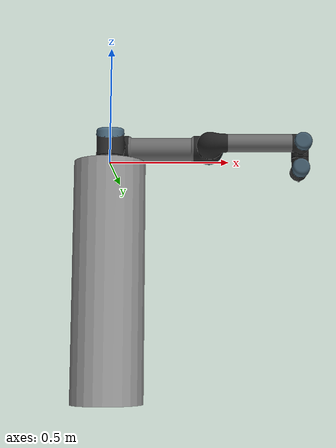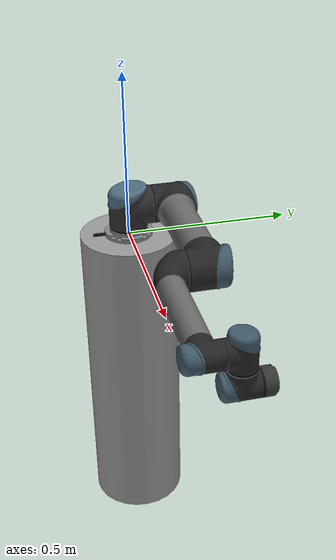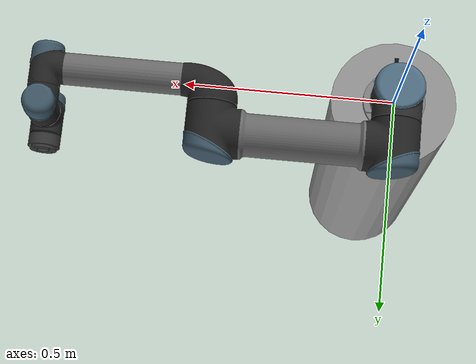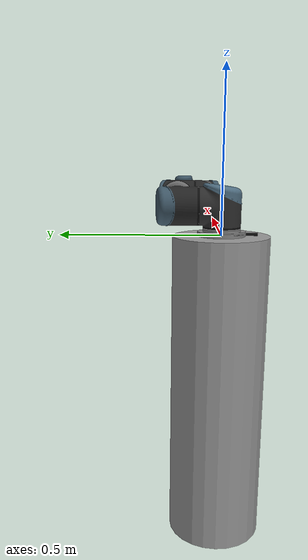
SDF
<?xml version='1.0'?>
<sdf version='1.6'>
  <model name='ur5'>
    <link name='base_link'>
      <pose frame=''>0 0 0 0 -0 0</pose>
      <inertial>
        <pose frame=''>0 0 0 0 -0 0</pose>
        <mass>4</mass>
        <inertia>
          <ixx>0.00443333</ixx>
          <ixy>0</ixy>
          <ixz>0</ixz>
          <iyy>0.00443333</iyy>
          <iyz>0</iyz>
          <izz>0.0072</izz>
        </inertia>
      </inertial>
      <self_collide>0</self_collide>
      <enable_wind>0</enable_wind>
      <kinematic>0</kinematic>
      <visual name='base_link_visual'>
        <pose frame=''>0 0 0 0 -0 0</pose>
        <geometry>
          <mesh>
            <scale>1 1 1</scale>
            <uri>model://ur5/meshes/ur5/visual/base.dae</uri>
          </mesh>
        </geometry>
        <transparency>0</transparency>
        <cast_shadows>1</cast_shadows>
        <material>
          <emissive>0 0 0 1</emissive>
        </material>
      </visual>
      <collision name='base_link_collision'>
        <laser_retro>0</laser_retro>
        <max_contacts>10</max_contacts>
        <pose frame=''>0 0 0 0 -0 0</pose>
        <geometry>
          <mesh>
            <uri>model://ur5/meshes/ur5/collision/base.stl</uri>
            <scale>1 1 1</scale>
          </mesh>
        </geometry>
        <surface>
          <friction>
            <ode>
              <mu>1</mu>
              <mu2>1</mu2>
              <fdir1>0 0 0</fdir1>
              <slip1>0</slip1>
              <slip2>0</slip2>
            </ode>
            <torsional>
              <coefficient>1</coefficient>
              <patch_radius>0</patch_radius>
              <surface_radius>0</surface_radius>
              <use_patch_radius>1</use_patch_radius>
              <ode>
                <slip>0</slip>
              </ode>
            </torsional>
          </friction>
          <bounce>
            <restitution_coefficient>0</restitution_coefficient>
            <threshold>1e+06</threshold>
          </bounce>
          <contact>
            <collide_without_contact>0</collide_without_contact>
            <collide_without_contact_bitmask>1</collide_without_contact_bitmask>
            <collide_bitmask>1</collide_bitmask>
            <ode>
              <soft_cfm>0</soft_cfm>
              <soft_erp>0.2</soft_erp>
              <kp>1e+13</kp>
              <kd>1</kd>
              <max_vel>0.01</max_vel>
              <min_depth>0</min_depth>
            </ode>
            <bullet>
              <split_impulse>1</split_impulse>
              <split_impulse_penetration_threshold>-0.01</split_impulse_penetration_threshold>
              <soft_cfm>0</soft_cfm>
              <soft_erp>0.2</soft_erp>
              <kp>1e+13</kp>
              <kd>1</kd>
            </bullet>
          </contact>
        </surface>
      </collision>
    </link>
    <link name='forearm_link'>
      <pose frame=''>0.425 0.01615 0.089159 3.14148 1.57079 3.14148</pose>
      <inertial>
        <pose frame=''>0 0 0.25 0 -0 0</pose>
        <mass>2.275</mass>
        <inertia>
          <ixx>0.0494433</ixx>
          <ixy>0</ixy>
          <ixz>0</ixz>
          <iyy>0.0494433</iyy>
          <iyz>0</iyz>
          <izz>0.004095</izz>
        </inertia>
      </inertial>
      <gravity>1</gravity>
      <velocity_decay/>
      <self_collide>1</self_collide>
      <enable_wind>0</enable_wind>
      <kinematic>0</kinematic>
      <visual name='forearm_link_visual'>
        <pose frame=''>0 0 0 0 -0 0</pose>
        <geometry>
          <mesh>
            <scale>1 1 1</scale>
            <uri>model://ur5/meshes/ur5/visual/forearm.dae</uri>
          </mesh>
        </geometry>
        <material>
          <script>
            <uri>__default__</uri>
            <name>__default__</name>
          </script>
        </material>
        <transparency>0</transparency>
        <cast_shadows>1</cast_shadows>
      </visual>
      <collision name='forearm_link_collision'>
        <laser_retro>0</laser_retro>
        <max_contacts>10</max_contacts>
        <pose frame=''>0 0 0 0 -0 0</pose>
        <geometry>
          <mesh>
            <uri>model://ur5/meshes/ur5/collision/forearm.stl</uri>
            <scale>1 1 1</scale>
          </mesh>
        </geometry>
        <surface>
          <friction>
            <ode>
              <mu>1</mu>
              <mu2>1</mu2>
              <fdir1>0 0 0</fdir1>
              <slip1>0</slip1>
              <slip2>0</slip2>
            </ode>
            <torsional>
              <coefficient>1</coefficient>
              <patch_radius>0</patch_radius>
              <surface_radius>0</surface_radius>
              <use_patch_radius>1</use_patch_radius>
              <ode>
                <slip>0</slip>
              </ode>
            </torsional>
          </friction>
          <bounce>
            <restitution_coefficient>0</restitution_coefficient>
            <threshold>1e+06</threshold>
          </bounce>
          <contact>
            <collide_without_contact>0</collide_without_contact>
            <collide_without_contact_bitmask>1</collide_without_contact_bitmask>
            <collide_bitmask>1</collide_bitmask>
            <ode>
              <soft_cfm>0</soft_cfm>
              <soft_erp>0.2</soft_erp>
              <kp>1e+13</kp>
              <kd>1</kd>
              <max_vel>0.01</max_vel>
              <min_depth>0</min_depth>
            </ode>
            <bullet>
              <split_impulse>1</split_impulse>
              <split_impulse_penetration_threshold>-0.01</split_impulse_penetration_threshold>
              <soft_cfm>0</soft_cfm>
              <soft_erp>0.2</soft_erp>
              <kp>1e+13</kp>
              <kd>1</kd>
            </bullet>
          </contact>
        </surface>
      </collision>
    </link>
    <link name='link_0'>
      <inertial>
        <mass>1</mass>
        <inertia>
          <ixx>0.145833</ixx>
          <ixy>0</ixy>
          <ixz>0</ixz>
          <iyy>0.145833</iyy>
          <iyz>0</iyz>
          <izz>0.125</izz>
        </inertia>
        <pose frame=''>0 0 0 0 -0 0</pose>
      </inertial>
      <pose frame=''>-0 -0 -0.5 -2.8e-05 0.00015 0</pose>
      <gravity>1</gravity>
      <self_collide>0</self_collide>
      <kinematic>0</kinematic>
      <enable_wind>0</enable_wind>
      <visual name='visual'>
        <pose frame=''>0 0 0 0 -0 0</pose>
        <geometry>
          <cylinder>
            <radius>0.15</radius>
            <length>1</length>
          </cylinder>
        </geometry>
        <material>
          <lighting>1</lighting>
          <script>
            <uri>file://media/materials/scripts/gazebo.material</uri>
            <name>Gazebo/Grey</name>
          </script>
          <shader type='vertex'>
            <normal_map>__default__</normal_map>
          </shader>
          <ambient>0.3 0.3 0.3 1</ambient>
          <diffuse>0.7 0.7 0.7 1</diffuse>
          <specular>0.01 0.01 0.01 1</specular>
          <emissive>0 0 0 1</emissive>
        </material>
        <transparency>0</transparency>
        <cast_shadows>1</cast_shadows>
      </visual>
      <collision name='collision'>
        <laser_retro>0</laser_retro>
        <max_contacts>10</max_contacts>
        <pose frame=''>0 0 0 0 -0 0</pose>
        <geometry>
          <cylinder>
            <radius>0.15</radius>
            <length>1</length>
          </cylinder>
        </geometry>
        <surface>
          <friction>
            <ode>
              <mu>1</mu>
              <mu2>1</mu2>
              <fdir1>0 0 0</fdir1>
              <slip1>0</slip1>
              <slip2>0</slip2>
            </ode>
            <torsional>
              <coefficient>1</coefficient>
              <patch_radius>0</patch_radius>
              <surface_radius>0</surface_radius>
              <use_patch_radius>1</use_patch_radius>
              <ode>
                <slip>0</slip>
              </ode>
            </torsional>
          </friction>
          <bounce>
            <restitution_coefficient>0</restitution_coefficient>
            <threshold>1e+06</threshold>
          </bounce>
          <contact>
            <collide_without_contact>0</collide_without_contact>
            <collide_without_contact_bitmask>1</collide_without_contact_bitmask>
            <collide_bitmask>1</collide_bitmask>
            <ode>
              <soft_cfm>0</soft_cfm>
              <soft_erp>0.2</soft_erp>
              <kp>1e+13</kp>
              <kd>1</kd>
              <max_vel>0.01</max_vel>
              <min_depth>0</min_depth>
            </ode>
            <bullet>
              <split_impulse>1</split_impulse>
              <split_impulse_penetration_threshold>-0.01</split_impulse_penetration_threshold>
              <soft_cfm>0</soft_cfm>
              <soft_erp>0.2</soft_erp>
              <kp>1e+13</kp>
              <kd>1</kd>
            </bullet>
          </contact>
        </surface>
      </collision>
    </link>
    <link name='shoulder_link'>
      <pose frame=''>0 -0 0.089159 0 -0 0</pose>
      <inertial>
        <pose frame=''>0 0 0 0 -0 0</pose>
        <mass>3.7</mass>
        <inertia>
          <ixx>0.0102675</ixx>
          <ixy>0</ixy>
          <ixz>0</ixz>
          <iyy>0.0102675</iyy>
          <iyz>0</iyz>
          <izz>0.00666</izz>
        </inertia>
      </inertial>
      <gravity>1</gravity>
      <velocity_decay/>
      <self_collide>1</self_collide>
      <enable_wind>0</enable_wind>
      <kinematic>0</kinematic>
      <visual name='shoulder_link_visual'>
        <pose frame=''>0 0 0 0 -0 0</pose>
        <geometry>
          <mesh>
            <scale>1 1 1</scale>
            <uri>model://ur5/meshes/ur5/visual/shoulder.dae</uri>
          </mesh>
        </geometry>
        <material>
          <script>
            <uri>__default__</uri>
            <name>__default__</name>
          </script>
        </material>
        <transparency>0</transparency>
        <cast_shadows>1</cast_shadows>
      </visual>
      <collision name='shoulder_link_collision'>
        <laser_retro>0</laser_retro>
        <max_contacts>10</max_contacts>
        <pose frame=''>0 0 0 0 -0 0</pose>
        <geometry>
          <mesh>
            <uri>model://ur5/meshes/ur5/collision/shoulder.stl</uri>
            <scale>1 1 1</scale>
          </mesh>
        </geometry>
        <surface>
          <friction>
            <ode>
              <mu>1</mu>
              <mu2>1</mu2>
              <fdir1>0 0 0</fdir1>
              <slip1>0</slip1>
              <slip2>0</slip2>
            </ode>
            <torsional>
              <coefficient>1</coefficient>
              <patch_radius>0</patch_radius>
              <surface_radius>0</surface_radius>
              <use_patch_radius>1</use_patch_radius>
              <ode>
                <slip>0</slip>
              </ode>
            </torsional>
          </friction>
          <bounce>
            <restitution_coefficient>0</restitution_coefficient>
            <threshold>1e+06</threshold>
          </bounce>
          <contact>
            <collide_without_contact>0</collide_without_contact>
            <collide_without_contact_bitmask>1</collide_without_contact_bitmask>
            <collide_bitmask>1</collide_bitmask>
            <ode>
              <soft_cfm>0</soft_cfm>
              <soft_erp>0.2</soft_erp>
              <kp>1e+13</kp>
              <kd>1</kd>
              <max_vel>0.01</max_vel>
              <min_depth>0</min_depth>
            </ode>
            <bullet>
              <split_impulse>1</split_impulse>
              <split_impulse_penetration_threshold>-0.01</split_impulse_penetration_threshold>
              <soft_cfm>0</soft_cfm>
              <soft_erp>0.2</soft_erp>
              <kp>1e+13</kp>
              <kd>1</kd>
            </bullet>
          </contact>
        </surface>
      </collision>
    </link>
    <link name='upper_arm_link'>
      <pose frame=''>-0 0.13585 0.089159 3.14148 1.57079 3.14148</pose>
      <inertial>
        <pose frame=''>0 0 0.28 0 -0 0</pose>
        <mass>8.393</mass>
        <inertia>
          <ixx>0.226891</ixx>
          <ixy>0</ixy>
          <ixz>0</ixz>
          <iyy>0.226891</iyy>
          <iyz>0</iyz>
          <izz>0.0151074</izz>
        </inertia>
      </inertial>
      <gravity>1</gravity>
      <velocity_decay/>
      <self_collide>1</self_collide>
      <enable_wind>0</enable_wind>
      <kinematic>0</kinematic>
      <visual name='upper_arm_link_visual'>
        <pose frame=''>0 0 0 0 -0 0</pose>
        <geometry>
          <mesh>
            <scale>1 1 1</scale>
            <uri>model://ur5/meshes/ur5/visual/upperarm.dae</uri>
          </mesh>
        </geometry>
        <material>
          <script>
            <uri>__default__</uri>
            <name>__default__</name>
          </script>
        </material>
        <transparency>0</transparency>
        <cast_shadows>1</cast_shadows>
      </visual>
      <collision name='upper_arm_link_collision'>
        <laser_retro>0</laser_retro>
        <max_contacts>10</max_contacts>
        <pose frame=''>0 0 0 0 -0 0</pose>
        <geometry>
          <mesh>
            <uri>model://ur5/meshes/ur5/collision/upperarm.stl</uri>
            <scale>1 1 1</scale>
          </mesh>
        </geometry>
        <surface>
          <friction>
            <ode>
              <mu>1</mu>
              <mu2>1</mu2>
              <fdir1>0 0 0</fdir1>
              <slip1>0</slip1>
              <slip2>0</slip2>
            </ode>
            <torsional>
              <coefficient>1</coefficient>
              <patch_radius>0</patch_radius>
              <surface_radius>0</surface_radius>
              <use_patch_radius>1</use_patch_radius>
              <ode>
                <slip>0</slip>
              </ode>
            </torsional>
          </friction>
          <bounce>
            <restitution_coefficient>0</restitution_coefficient>
            <threshold>1e+06</threshold>
          </bounce>
          <contact>
            <collide_without_contact>0</collide_without_contact>
            <collide_without_contact_bitmask>1</collide_without_contact_bitmask>
            <collide_bitmask>1</collide_bitmask>
            <ode>
              <soft_cfm>0</soft_cfm>
              <soft_erp>0.2</soft_erp>
              <kp>1e+13</kp>
              <kd>1</kd>
              <max_vel>0.01</max_vel>
              <min_depth>0</min_depth>
            </ode>
            <bullet>
              <split_impulse>1</split_impulse>
              <split_impulse_penetration_threshold>-0.01</split_impulse_penetration_threshold>
              <soft_cfm>0</soft_cfm>
              <soft_erp>0.2</soft_erp>
              <kp>1e+13</kp>
              <kd>1</kd>
            </bullet>
          </contact>
        </surface>
      </collision>
    </link>
    <link name='wrist_1_link'>
      <pose frame=''>0.81725 0.01615 0.089159 3.14159 -0 3.14159</pose>
      <inertial>
        <pose frame=''>0 0 0 0 -0 0</pose>
        <mass>1.219</mass>
        <inertia>
          <ixx>0.111173</ixx>
          <ixy>0</ixy>
          <ixz>0</ixz>
          <iyy>0.111173</iyy>
          <iyz>0</iyz>
          <izz>0.21942</izz>
        </inertia>
      </inertial>
      <gravity>1</gravity>
      <velocity_decay/>
      <self_collide>1</self_collide>
      <enable_wind>0</enable_wind>
      <kinematic>0</kinematic>
      <visual name='wrist_1_link_visual'>
        <pose frame=''>0 0 0 0 -0 0</pose>
        <geometry>
          <mesh>
            <scale>1 1 1</scale>
            <uri>model://ur5/meshes/ur5/visual/wrist1.dae</uri>
          </mesh>
        </geometry>
        <material>
          <script>
            <uri>__default__</uri>
            <name>__default__</name>
          </script>
        </material>
        <transparency>0</transparency>
        <cast_shadows>1</cast_shadows>
      </visual>
      <collision name='wrist_1_link_collision'>
        <laser_retro>0</laser_retro>
        <max_contacts>10</max_contacts>
        <pose frame=''>0 0 0 0 -0 0</pose>
        <geometry>
          <mesh>
            <uri>model://ur5/meshes/ur5/collision/wrist1.stl</uri>
            <scale>1 1 1</scale>
          </mesh>
        </geometry>
        <surface>
          <friction>
            <ode>
              <mu>1</mu>
              <mu2>1</mu2>
              <fdir1>0 0 0</fdir1>
              <slip1>0</slip1>
              <slip2>0</slip2>
            </ode>
            <torsional>
              <coefficient>1</coefficient>
              <patch_radius>0</patch_radius>
              <surface_radius>0</surface_radius>
              <use_patch_radius>1</use_patch_radius>
              <ode>
                <slip>0</slip>
              </ode>
            </torsional>
          </friction>
          <bounce>
            <restitution_coefficient>0</restitution_coefficient>
            <threshold>1e+06</threshold>
          </bounce>
          <contact>
            <collide_without_contact>0</collide_without_contact>
            <collide_without_contact_bitmask>1</collide_without_contact_bitmask>
            <collide_bitmask>1</collide_bitmask>
            <ode>
              <soft_cfm>0</soft_cfm>
              <soft_erp>0.2</soft_erp>
              <kp>1e+13</kp>
              <kd>1</kd>
              <max_vel>0.01</max_vel>
              <min_depth>0</min_depth>
            </ode>
            <bullet>
              <split_impulse>1</split_impulse>
              <split_impulse_penetration_threshold>-0.01</split_impulse_penetration_threshold>
              <soft_cfm>0</soft_cfm>
              <soft_erp>0.2</soft_erp>
              <kp>1e+13</kp>
              <kd>1</kd>
            </bullet>
          </contact>
        </surface>
      </collision>
    </link>
    <link name='wrist_2_link'>
      <pose frame=''>0.81725 0.10915 0.089159 3.14159 -0 3.14159</pose>
      <inertial>
        <pose frame=''>0 0 0 0 -0 0</pose>
        <mass>1.219</mass>
        <inertia>
          <ixx>0.111173</ixx>
          <ixy>0</ixy>
          <ixz>0</ixz>
          <iyy>0.111173</iyy>
          <iyz>0</iyz>
          <izz>0.21942</izz>
        </inertia>
      </inertial>
      <gravity>1</gravity>
      <velocity_decay/>
      <self_collide>1</self_collide>
      <enable_wind>0</enable_wind>
      <kinematic>0</kinematic>
      <visual name='wrist_2_link_visual'>
        <pose frame=''>0 0 0 0 -0 0</pose>
        <geometry>
          <mesh>
            <scale>1 1 1</scale>
            <uri>model://ur5/meshes/ur5/visual/wrist2.dae</uri>
          </mesh>
        </geometry>
        <material>
          <script>
            <uri>__default__</uri>
            <name>__default__</name>
          </script>
        </material>
        <transparency>0</transparency>
        <cast_shadows>1</cast_shadows>
      </visual>
      <collision name='wrist_2_link_collision'>
        <laser_retro>0</laser_retro>
        <max_contacts>10</max_contacts>
        <pose frame=''>0 0 0 0 -0 0</pose>
        <geometry>
          <mesh>
            <uri>model://ur5/meshes/ur5/collision/wrist2.stl</uri>
            <scale>1 1 1</scale>
          </mesh>
        </geometry>
        <surface>
          <friction>
            <ode>
              <mu>1</mu>
              <mu2>1</mu2>
              <fdir1>0 0 0</fdir1>
              <slip1>0</slip1>
              <slip2>0</slip2>
            </ode>
            <torsional>
              <coefficient>1</coefficient>
              <patch_radius>0</patch_radius>
              <surface_radius>0</surface_radius>
              <use_patch_radius>1</use_patch_radius>
              <ode>
                <slip>0</slip>
              </ode>
            </torsional>
          </friction>
          <bounce>
            <restitution_coefficient>0</restitution_coefficient>
            <threshold>1e+06</threshold>
          </bounce>
          <contact>
            <collide_without_contact>0</collide_without_contact>
            <collide_without_contact_bitmask>1</collide_without_contact_bitmask>
            <collide_bitmask>1</collide_bitmask>
            <ode>
              <soft_cfm>0</soft_cfm>
              <soft_erp>0.2</soft_erp>
              <kp>1e+13</kp>
              <kd>1</kd>
              <max_vel>0.01</max_vel>
              <min_depth>0</min_depth>
            </ode>
            <bullet>
              <split_impulse>1</split_impulse>
              <split_impulse_penetration_threshold>-0.01</split_impulse_penetration_threshold>
              <soft_cfm>0</soft_cfm>
              <soft_erp>0.2</soft_erp>
              <kp>1e+13</kp>
              <kd>1</kd>
            </bullet>
          </contact>
        </surface>
      </collision>
    </link>
    <link name='wrist_3_link'>
      <pose frame=''>0.81725 0.10915 -0.005491 3.14159 -0 3.14159</pose>
      <inertial>
        <pose frame=''>-0 3e-06 3e-06 0 -0 0</pose>
        <mass>0.18791</mass>
        <inertia>
          <ixx>0.0171375</ixx>
          <ixy>6.10083e-20</ixy>
          <ixz>5.38596e-20</ixz>
          <iyy>0.0171375</iyy>
          <iyz>-3.42632e-08</iyz>
          <izz>0.033823</izz>
        </inertia>
      </inertial>
      <velocity_decay/>
      <velocity_decay/>
      <self_collide>1</self_collide>
      <velocity_decay/>
      <gravity>1</gravity>
      <velocity_decay/>
      <enable_wind>0</enable_wind>
      <kinematic>0</kinematic>
      <visual name='wrist_3_link_visual'>
        <pose frame=''>0 0 0 0 -0 0</pose>
        <geometry>
          <mesh>
            <scale>1 1 1</scale>
            <uri>model://ur5/meshes/ur5/visual/wrist3.dae</uri>
          </mesh>
        </geometry>
        <material>
          <script>
            <uri>__default__</uri>
            <name>__default__</name>
          </script>
          <emissive>0 0 0 1</emissive>
        </material>
        <transparency>0</transparency>
        <cast_shadows>1</cast_shadows>
      </visual>
      <collision name='wrist_3_link_collision'>
        <laser_retro>0</laser_retro>
        <max_contacts>10</max_contacts>
        <pose frame=''>0 0 0 0 -0 0</pose>
        <geometry>
          <mesh>
            <uri>model://ur5/meshes/ur5/collision/wrist3.stl</uri>
            <scale>1 1 1</scale>
          </mesh>
        </geometry>
        <surface>
          <friction>
            <ode>
              <mu>1</mu>
              <mu2>1</mu2>
              <fdir1>0 0 0</fdir1>
              <slip1>0</slip1>
              <slip2>0</slip2>
            </ode>
            <torsional>
              <coefficient>1</coefficient>
              <patch_radius>0</patch_radius>
              <surface_radius>0</surface_radius>
              <use_patch_radius>1</use_patch_radius>
              <ode>
                <slip>0</slip>
              </ode>
            </torsional>
          </friction>
          <bounce>
            <restitution_coefficient>0</restitution_coefficient>
            <threshold>1e+06</threshold>
          </bounce>
          <contact>
            <collide_without_contact>0</collide_without_contact>
            <collide_without_contact_bitmask>1</collide_without_contact_bitmask>
            <collide_bitmask>1</collide_bitmask>
            <ode>
              <soft_cfm>0</soft_cfm>
              <soft_erp>0.2</soft_erp>
              <kp>1e+13</kp>
              <kd>1</kd>
              <max_vel>0.01</max_vel>
              <min_depth>0</min_depth>
            </ode>
            <bullet>
              <split_impulse>1</split_impulse>
              <split_impulse_penetration_threshold>-0.01</split_impulse_penetration_threshold>
              <soft_cfm>0</soft_cfm>
              <soft_erp>0.2</soft_erp>
              <kp>1e+13</kp>
              <kd>1</kd>
            </bullet>
          </contact>
        </surface>
      </collision>
    </link>

    <joint name='elbow_joint' type='revolute'>
      <parent>upper_arm_link</parent>
      <child>forearm_link</child>
      <pose frame=''>0 0 0 0 -0 0</pose>
      <axis>
        <xyz>0 1 0</xyz>
        <use_parent_model_frame>1</use_parent_model_frame>
        <limit>
          <lower>-3.14159</lower>
          <upper>3.14159</upper>
          <effort>150</effort>
          <velocity>3.15</velocity>
        </limit>
        <dynamics>
          <spring_reference>0</spring_reference>
          <spring_stiffness>0</spring_stiffness>
          <damping>0</damping>
          <friction>0</friction>
        </dynamics>
      </axis>
      <physics>
        <ode>
          <limit>
            <cfm>0</cfm>
            <erp>0.2</erp>
          </limit>
          <suspension>
            <cfm>0</cfm>
            <erp>0.2</erp>
          </suspension>
        </ode>
      </physics>
    </joint>
    <joint name='link_0_JOINT_1' type='fixed'>
      <parent>link_0</parent>
      <child>base_link</child>
      <pose frame=''>0 0 0 0 -0 0</pose>
      <physics>
        <ode>
          <limit>
            <cfm>0</cfm>
            <erp>0.2</erp>
          </limit>
          <suspension>
            <cfm>0</cfm>
            <erp>0.2</erp>
          </suspension>
        </ode>
      </physics>
    </joint>
    <joint name='shoulder_lift_joint' type='revolute'>
      <parent>shoulder_link</parent>
      <child>upper_arm_link</child>
      <pose frame=''>0 0 0 0 -0 0</pose>
      <axis>
        <xyz>0 1 0</xyz>
        <use_parent_model_frame>1</use_parent_model_frame>
        <limit>
          <lower>-6.28319</lower>
          <upper>6.28319</upper>
          <effort>150</effort>
          <velocity>3.15</velocity>
        </limit>
        <dynamics>
          <spring_reference>0</spring_reference>
          <spring_stiffness>0</spring_stiffness>
          <damping>0</damping>
          <friction>0</friction>
        </dynamics>
      </axis>
      <physics>
        <ode>
          <limit>
            <cfm>0</cfm>
            <erp>0.2</erp>
          </limit>
          <suspension>
            <cfm>0</cfm>
            <erp>0.2</erp>
          </suspension>
        </ode>
      </physics>
    </joint>
    <joint name='shoulder_pan_joint' type='revolute'>
      <parent>base_link</parent>
      <child>shoulder_link</child>
      <pose frame=''>0 0 0 0 -0 0</pose>
      <axis>
        <xyz>0 0 1</xyz>
        <use_parent_model_frame>1</use_parent_model_frame>
        <limit>
          <lower>-6.28319</lower>
          <upper>6.28319</upper>
          <effort>150</effort>
          <velocity>3.15</velocity>
        </limit>
        <dynamics>
          <spring_reference>0</spring_reference>
          <spring_stiffness>0</spring_stiffness>
          <damping>0</damping>
          <friction>0</friction>
        </dynamics>
      </axis>
      <physics>
        <ode>
          <limit>
            <cfm>0</cfm>
            <erp>0.2</erp>
          </limit>
          <suspension>
            <cfm>0</cfm>
            <erp>0.2</erp>
          </suspension>
        </ode>
      </physics>
    </joint>
    <joint name='wrist_1_joint' type='revolute'>
      <parent>forearm_link</parent>
      <child>wrist_1_link</child>
      <pose frame=''>0 0 0 0 -0 0</pose>
      <axis>
        <xyz>0 1 0</xyz>
        <use_parent_model_frame>1</use_parent_model_frame>
        <limit>
          <lower>-6.28319</lower>
          <upper>6.28319</upper>
          <effort>28</effort>
          <velocity>3.2</velocity>
        </limit>
        <dynamics>
          <spring_reference>0</spring_reference>
          <spring_stiffness>0</spring_stiffness>
          <damping>0</damping>
          <friction>0</friction>
        </dynamics>
      </axis>
      <physics>
        <ode>
          <limit>
            <cfm>0</cfm>
            <erp>0.2</erp>
          </limit>
          <suspension>
            <cfm>0</cfm>
            <erp>0.2</erp>
          </suspension>
        </ode>
      </physics>
    </joint>
    <joint name='wrist_2_joint' type='revolute'>
      <parent>wrist_1_link</parent>
      <child>wrist_2_link</child>
      <pose frame=''>0 0 0 0 -0 0</pose>
      <axis>
        <xyz>0 0 -1</xyz>
        <use_parent_model_frame>1</use_parent_model_frame>
        <limit>
          <lower>-6.28319</lower>
          <upper>6.28319</upper>
          <effort>28</effort>
          <velocity>3.2</velocity>
        </limit>
        <dynamics>
          <spring_reference>0</spring_reference>
          <spring_stiffness>0</spring_stiffness>
          <damping>0</damping>
          <friction>0</friction>
        </dynamics>
      </axis>
      <physics>
        <ode>
          <limit>
            <cfm>0</cfm>
            <erp>0.2</erp>
          </limit>
          <suspension>
            <cfm>0</cfm>
            <erp>0.2</erp>
          </suspension>
        </ode>
      </physics>
    </joint>
    <joint name='wrist_3_joint' type='revolute'>
      <parent>wrist_2_link</parent>
      <child>wrist_3_link</child>
      <pose frame=''>0 0 0 0 -0 0</pose>
      <axis>
        <xyz>0 1 0</xyz>
        <use_parent_model_frame>1</use_parent_model_frame>
        <limit>
          <lower>-6.28319</lower>
          <upper>6.28319</upper>
          <effort>28</effort>
          <velocity>3.2</velocity>
        </limit>
        <dynamics>
          <spring_reference>0</spring_reference>
          <spring_stiffness>0</spring_stiffness>
          <damping>0</damping>
          <friction>0</friction>
        </dynamics>
      </axis>
      <physics>
        <ode>
          <limit>
            <cfm>0</cfm>
            <erp>0.2</erp>
          </limit>
          <suspension>
            <cfm>0</cfm>
            <erp>0.2</erp>
          </suspension>
        </ode>
      </physics>
    </joint>
    <static>0</static>
    <allow_auto_disable>1</allow_auto_disable>
  </model>
</sdf>
